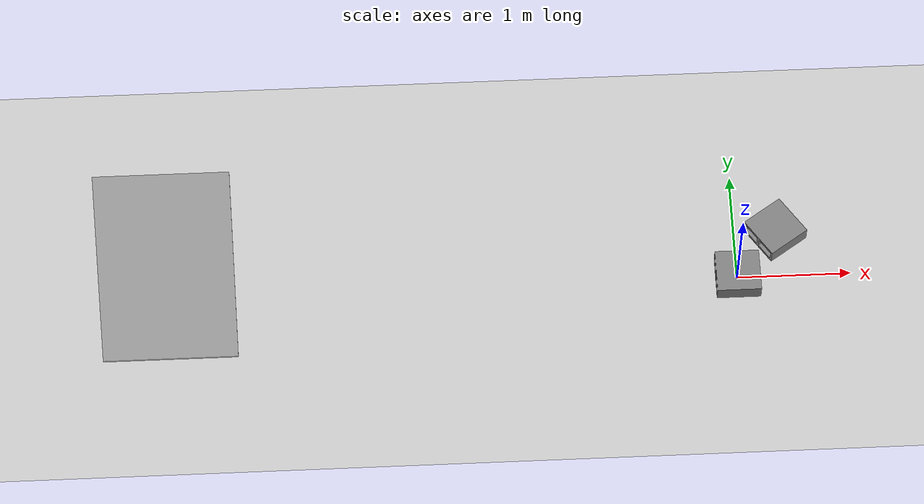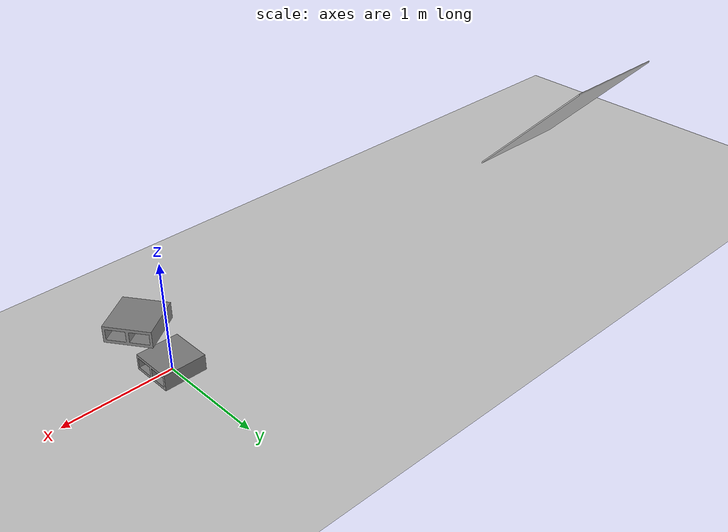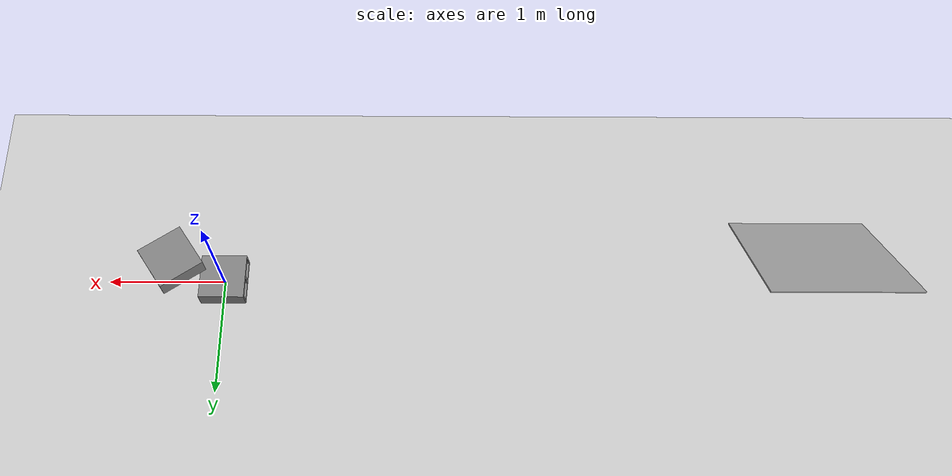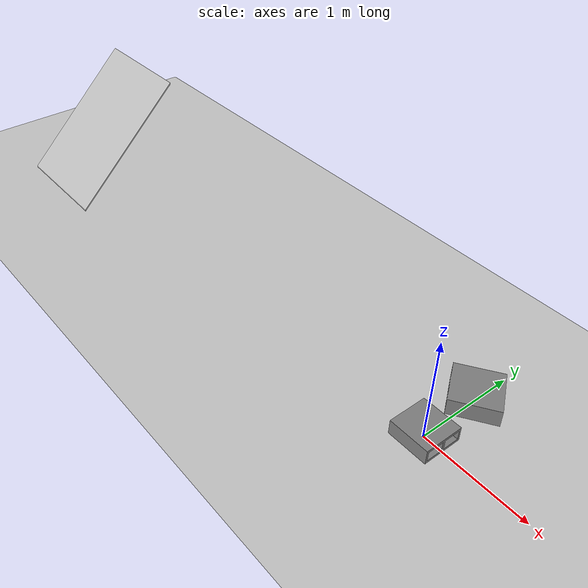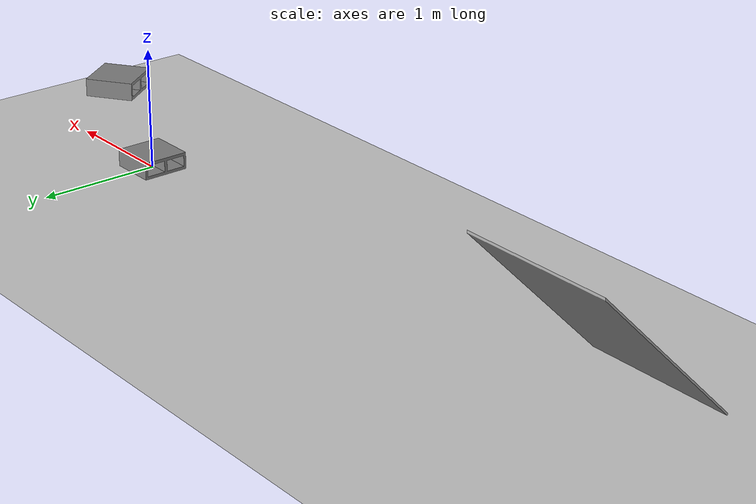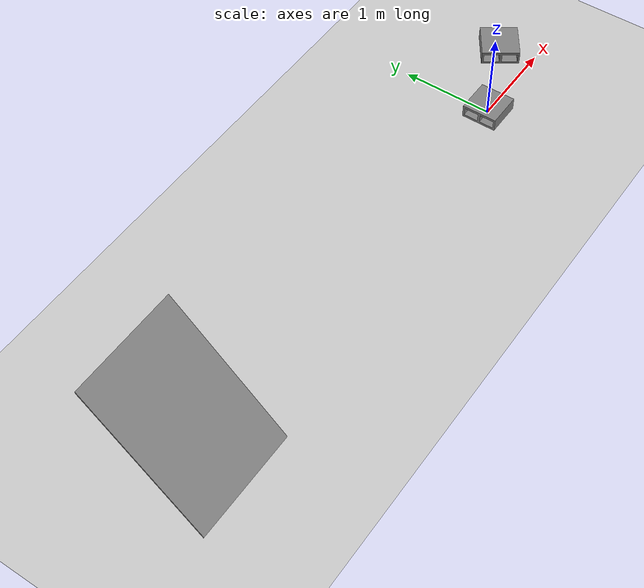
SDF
<?xml version="1.0" ?>
<sdf version="1.4">
  <world name="default">

    <physics type='ode'>
      <max_step_size>0.01</max_step_size>
      <real_time_factor>1</real_time_factor>
      <real_time_update_rate>100</real_time_update_rate>
      <gravity>0 0 -9.8</gravity>
    </physics>

    <!-- A global light source -->
    <include>
      <uri>model://sun</uri>
    </include>

    <!-- A ground plane -->
    <include>
      <uri>model://ground_plane</uri>
    </include>

    <include>
      <uri>model://cinderblock2</uri>
    </include>

    <model name="ramp2">
      <static>true</static>
      <link name="nist_simple_ramp_120_link">
        <pose>-5 0 0.0 0 0 0</pose>
        <collision name="collision">
          <geometry>
            <mesh>
              <uri>model://ramp2/meshes/nist_simple_ramp_120.dae</uri>
              <scale>1 1 1</scale>
            </mesh>
          </geometry>
        </collision>
        <visual name="visual">
          <geometry>
            <mesh>
              <uri>model://ramp2/meshes/nist_simple_ramp_120.dae</uri>
              <scale>1 1 1</scale>
            </mesh>
          </geometry>
        </visual>
      </link>
    </model>

    <model name="cinderblock3">
      <link name="link">
        <pose>0.3 0.1 0.6 0 0 0.6</pose>
        <inertial>
          <pose>0 0 0.0714375 0 0 0</pose>
          <mass>5</mass>
          <!-- approximate as uniform box 0.387 x 0.387 x 0.092 m -->
          <inertia>
            <ixx>0.06814656666666667</ixx>
            <ixy>0.0000</ixy>
            <iyy>0.06814656666666667</iyy>
            <ixz>0.0000</ixz>
            <iyz>0.0000</iyz>
            <izz>0.1248075</izz>
          </inertia>
        </inertial>
        <visual name="visual">
          <geometry>
            <mesh>
              <uri>model://cinderblock2/meshes/cinder_block_wide.dae</uri>
            </mesh>
          </geometry>
        </visual>
        <collision name="top">
          <pose>0 0 0.130175 0 0 0</pose>
          <geometry>
            <box>
              <size>0.387353556 0.387353556 0.0254</size>
            </box>
          </geometry>
          <surface>
            <contact>
              <ode>
                <max_vel>0.1</max_vel>
                <min_depth>0.001</min_depth>
              </ode>
            </contact>
            <friction>
              <ode>
                <mu>1.0</mu>
                <mu2>1.0</mu2>
              </ode>
            </friction>
          </surface>
        </collision>
        <collision name="bottom">
          <pose>0 0 0.0127 0 0 0</pose>
          <geometry>
            <box>
              <size>0.387353556 0.387353556 0.0254</size>
            </box>
          </geometry>
          <surface>
            <contact>
              <ode>
                <max_vel>0.1</max_vel>
                <min_depth>0.001</min_depth>
              </ode>
            </contact>
            <friction>
              <ode>
                <mu>1.0</mu>
                <mu2>1.0</mu2>
              </ode>
            </friction>
          </surface>
        </collision>
        <collision name="left">
          <pose>0 -0.183355107 0.0714375 0 0 0</pose>
          <geometry>
            <box>
              <size>0.387353556 0.020643342 0.092075</size>
            </box>
          </geometry>
          <surface>
            <contact>
              <ode>
                <max_vel>0.1</max_vel>
                <min_depth>0.001</min_depth>
              </ode>
            </contact>
            <friction>
              <ode>
                <mu>1.0</mu>
                <mu2>1.0</mu2>
              </ode>
            </friction>
          </surface>
        </collision>
        <collision name="right">
          <pose>0 0.183355107 0.0714375 0 0 0</pose>
          <geometry>
            <box>
              <size>0.387353556 0.020643342 0.092075</size>
            </box>
          </geometry>
          <surface>
            <contact>
              <ode>
                <max_vel>0.1</max_vel>
                <min_depth>0.001</min_depth>
              </ode>
            </contact>
            <friction>
              <ode>
                <mu>1.0</mu>
                <mu2>1.0</mu2>
              </ode>
            </friction>
          </surface>
        </collision>
        <collision name="middle">
          <pose>0 0 0.0714375 0 0 0</pose>
          <geometry>
            <box>
              <size>0.387353556 0.0254 0.092075</size>
            </box>
          </geometry>
          <surface>
            <contact>
              <ode>
                <max_vel>0.1</max_vel>
                <min_depth>0.001</min_depth>
              </ode>
            </contact>
            <friction>
              <ode>
                <mu>1.0</mu>
                <mu2>1.0</mu2>
              </ode>
            </friction>
          </surface>
        </collision>
      </link>
    </model>

  </world>
</sdf>

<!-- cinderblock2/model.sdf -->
<sdf version="1.5">
  <model name="cinderblock2">
    <link name="link">
      <inertial>
        <pose>0 0 0.0714375 0 0 0</pose>
        <mass>5</mass>
        <!-- approximate as uniform box 0.387 x 0.387 x 0.092 m -->
        <inertia>
          <ixx>0.06814656666666667</ixx>
          <ixy>0.0000</ixy>
          <iyy>0.06814656666666667</iyy>
          <ixz>0.0000</ixz>
          <iyz>0.0000</iyz>
          <izz>0.1248075</izz>
        </inertia>
      </inertial>
      <visual name="visual">
        <geometry>
          <mesh>
            <uri>model://cinderblock2/meshes/cinder_block_wide.dae</uri>
          </mesh>
        </geometry>
      </visual>
      <collision name="top">
        <pose>0 0 0.130175 0 0 0</pose>
        <geometry>
          <box>
            <size>0.387353556 0.387353556 0.0254</size>
          </box>
        </geometry>
        <surface>
          <contact>
            <ode>
              <max_vel>0.1</max_vel>
              <min_depth>0.001</min_depth>
            </ode>
          </contact>
          <friction>
            <ode>
              <mu>1.0</mu>
              <mu2>1.0</mu2>
            </ode>
          </friction>
        </surface>
      </collision>
      <collision name="bottom">
        <pose>0 0 0.0127 0 0 0</pose>
        <geometry>
          <box>
            <size>0.387353556 0.387353556 0.0254</size>
          </box>
        </geometry>
        <surface>
          <contact>
            <ode>
              <max_vel>0.1</max_vel>
              <min_depth>0.001</min_depth>
            </ode>
          </contact>
          <friction>
            <ode>
              <mu>1.0</mu>
              <mu2>1.0</mu2>
            </ode>
          </friction>
        </surface>
      </collision>
      <collision name="left">
        <pose>0 -0.183355107 0.0714375 0 0 0</pose>
        <geometry>
          <box>
            <size>0.387353556 0.020643342 0.092075</size>
          </box>
        </geometry>
        <surface>
          <contact>
            <ode>
              <max_vel>0.1</max_vel>
              <min_depth>0.001</min_depth>
            </ode>
          </contact>
          <friction>
            <ode>
              <mu>1.0</mu>
              <mu2>1.0</mu2>
            </ode>
          </friction>
        </surface>
      </collision>
      <collision name="right">
        <pose>0 0.183355107 0.0714375 0 0 0</pose>
        <geometry>
          <box>
            <size>0.387353556 0.020643342 0.092075</size>
          </box>
        </geometry>
        <surface>
          <contact>
            <ode>
              <max_vel>0.1</max_vel>
              <min_depth>0.001</min_depth>
            </ode>
          </contact>
          <friction>
            <ode>
              <mu>1.0</mu>
              <mu2>1.0</mu2>
            </ode>
          </friction>
        </surface>
      </collision>
      <collision name="middle">
        <pose>0 0 0.0714375 0 0 0</pose>
        <geometry>
          <box>
            <size>0.387353556 0.0254 0.092075</size>
          </box>
        </geometry>
        <surface>
          <contact>
            <ode>
              <max_vel>0.1</max_vel>
              <min_depth>0.001</min_depth>
            </ode>
          </contact>
          <friction>
            <ode>
              <mu>1.0</mu>
              <mu2>1.0</mu2>
            </ode>
          </friction>
        </surface>
      </collision>
    </link>
  </model>
</sdf>
